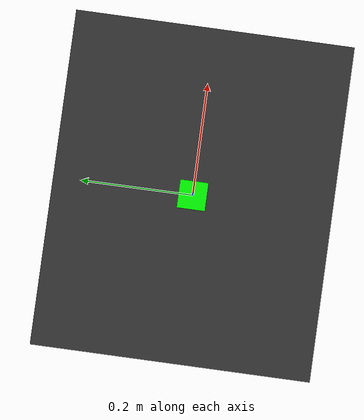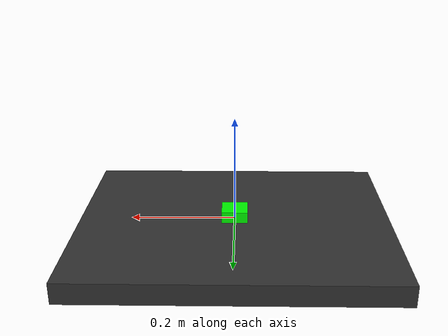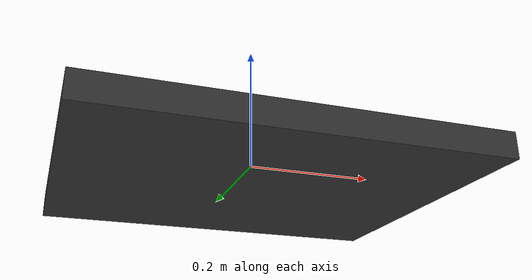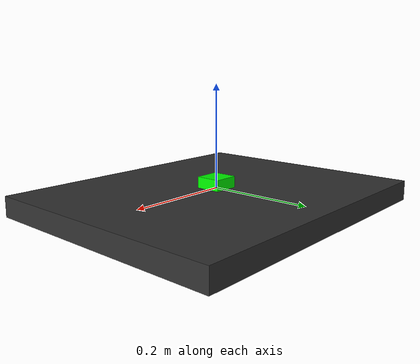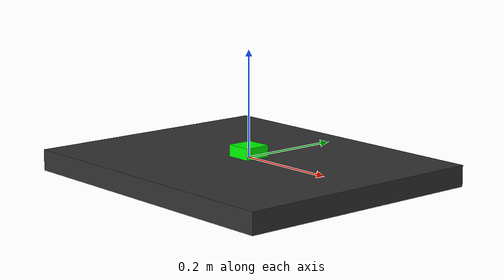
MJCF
<mujoco model="cf2">
  <option density="1.225" viscosity="1.8e-5"/>

  <compiler inertiafromgeom="false" meshdir="assets" autolimits="true" eulerseq="xyz"/>

  <worldbody>
    <light cutoff="100" diffuse="1 1 1" dir="-0 0 -1.3" directional="true" exponent="1" pos="0 0 1.3" specular=".1 .1 .1"/>
    <!-- table -->
    <!-- platform -->
    <body name="_platform_xyz" pos="0.0 0.0 0.0" >
      <freejoint/>
      <inertial euler="0 0 0" pos="0 0 0" mass="1e-06" diaginertia="1e-06 1e-06 1e-06"/>
      <body name="_platform" pos="0.0 0.0 0.0" >
        <inertial euler="0 0 0" pos="0 0 0" mass="1e0" diaginertia="1e0 1e0 1e0"/>
          <geom name="_platform_geom" rgba="0.2 0.2 0.2 1" type="box" pos="0 0 -0.02" size="0.30 0.25 0.02" contype="4" conaffinity="1" condim="3"/>
          <joint name="_platform_pitch" type="hinge" pos="0 0 0" axis="0 1 0" limited="false" damping="0.5"/>
      </body>
    </body>
    <!-- crazyflie -->
    <body name="cf2" pos="0 0 0">
      <freejoint/>
      <inertial pos="0 0 0" mass="0.027" diaginertia="2.3951e-5 2.3951e-5 3.2347e-5"/>
      <geom name="cf_collision" type="box" rgba="0 1 0 1" pos="0 0 0.012" size="0.025 0.025 0.011" contype="1" conaffinity= "6"/>
      <body name="cf_mocap" pos="0.0 0.0 0.013" >
        <inertial euler="0 0 0" pos="0 0 0" mass="1e-09" diaginertia="1e-09 1e-09 1e-09"/>
        <joint name="cf_mocap" type="slide" axis="1 0 0" range="-0.01 0.01"/>
        <geom type="sphere" name="" rgba="0 0 1 1" pos="0 0 0." size="0.005" contype="0" conaffinity="0"/>
      </body>
    </body>
  </worldbody>

  <actuator>
    <position joint="_platform_pitch" kp="20" ctrllimited="true" ctrlrange="-3.14 3.14"/>
  </actuator>

</mujoco>
